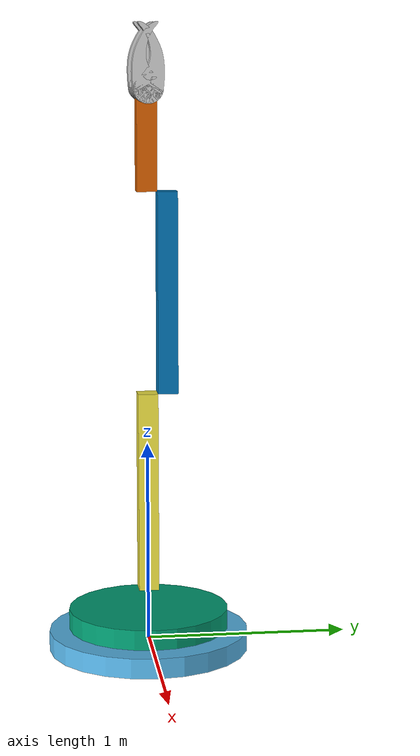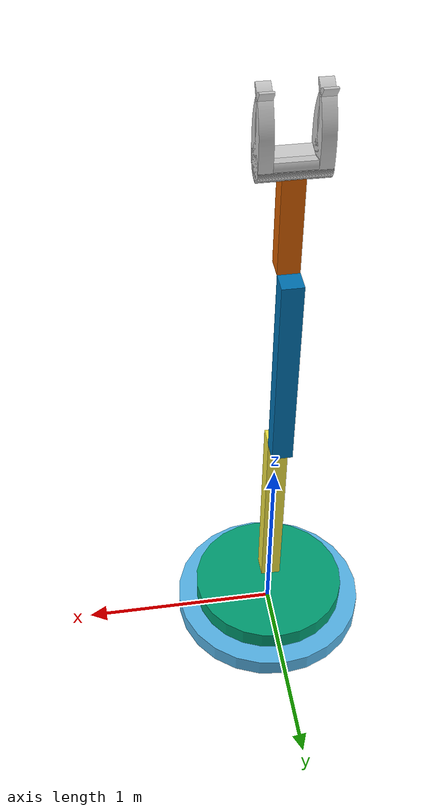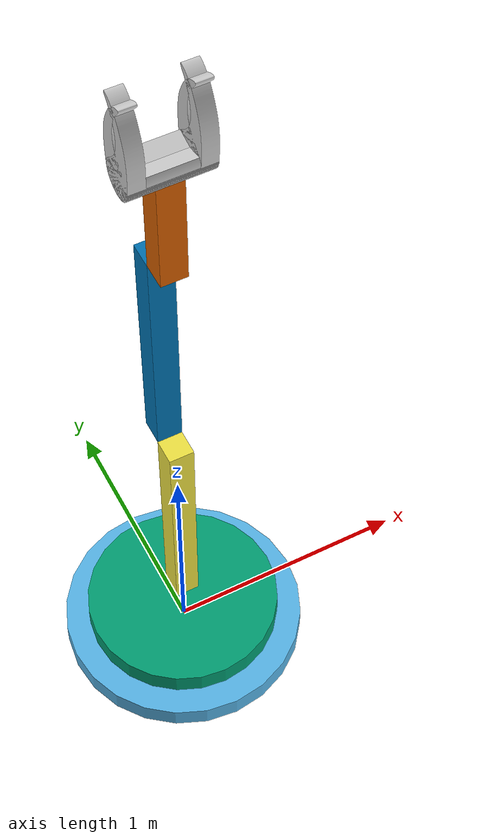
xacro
<?xml version="1.0"?>
<robot name="hdm_robotarm01" xmlns:xacro="http://www.ros.org/wiki/xacro">

    <xacro:include filename="$(find hdm_robotarm01)/urdf/xacro/link_joint.xacro"/>
    <xacro:include filename="$(find hdm_robotarm01)/urdf/xacro/transmission.xacro"/>
    <xacro:include filename="$(find hdm_robotarm01)/urdf/xacro/gazebo.xacro"/>

    <!-- fix model to world -->
    <link name="world"/>

    <joint name="fixed" type="fixed">
        <parent link="world"/>
        <child link="stationary_base"/>
    </joint>

    <!-- stationary_base -->
    <xacro:xacro_cylinder
        name="stationary_base"
        length="0.1"
        radius="0.5"
        mass="10.0"
        origin_rpy="0 0 0"
        origin_xyz="0 0 0"
    />

    <!-- spin_base -->
    <xacro:xacro_cylinder
        name="spin_base"
        length="0.1"
        radius="0.4"
        mass="2.0"
        origin_rpy="0 0 0"
        origin_xyz="0 0 0.05"
    />
    <xacro:xacro_joint
        name="stationary_base_spin_base_joint"
        type="revolute"
        axis="0 0 1"
        lower="-3.14"
        upper="3.14"
        parent="stationary_base"
        child="spin_base"
        origin_xyz="0 0 0.06"
    />
    <xacro:xacro_trans_position
        name="stationary_base_spin_base_trans"
        actuator="stationary_base_spin_base_actuator"
        joint="stationary_base_spin_base_joint"
    />

    <!-- arm1 -->
    <xacro:xacro_box
        name="arm1"
        w="1"
        h="0.1"
        d="0.1"
        origin_rpy="0 1.57 0"
        origin_xyz="0 0 0.5"
        mass="0.5"
    />
    <xacro:xacro_joint
        name="spin_base_arm1_joint"
        type="revolute"
        axis="0 1 0"
        lower="-1.57"
        upper="1.57"
        parent="spin_base"
        child="arm1"
        origin_xyz="0 0 0.2"
    />
    <xacro:xacro_trans_position
        name="spin_base_arm1_trans"
        actuator="spin_base_arm1_actuator"
        joint="spin_base_arm1_joint"
    />

    <!-- arm2 -->
    <xacro:xacro_box
        name="arm2"
        w="1"
        h="0.1"
        d="0.1"
        origin_rpy="0 1.57 0"
        origin_xyz="0 0.05 0.5"
        mass="0.5"
    />
    <xacro:xacro_joint
        name="arm1_arm2_joint"
        type="revolute"
        axis="0 1 0"
        lower="-3.14"
        upper="3.14"
        parent="arm1"
        child="arm2"
        origin_xyz="0 0.05 1"
    />
    <xacro:xacro_trans_position
        name="arm1_arm2_trans"
        actuator="arm1_arm2_actuator"
        joint="arm1_arm2_joint"
    />

    <!-- arm3 -->
    <xacro:xacro_box
        name="arm3"
        w="0.5"
        h="0.1"
        d="0.1"
        origin_rpy="0 1.57 0"
        origin_xyz="0 -0.05 0.25"
        mass="0.5"
    />
    <xacro:xacro_joint
        name="arm2_arm3_joint"
        type="revolute"
        axis="0 1 0"
        lower="-3.14"
        upper="3.14"
        parent="arm2"
        child="arm3"
        origin_xyz="0 0 1"
    />
    <xacro:xacro_trans_position
        name="arm2_arm3_trans"
        actuator="arm2_arm3_actuator"
        joint="arm2_arm3_joint"
    />

    <!-- gripper1 -->
    <xacro:xacro_mesh
        name="gripper1"
        file="package://hdm_robotarm01/mesh/gripper1.dae"
        origin_rpy="1.57 0 1.57"
        origin_xyz="-0.15 0 0"
        mass="0.1"
        scale="3"
    />
    <xacro:xacro_joint
        name="arm3_gripper1_joint"
        type="revolute"
        axis="-1 0 0"
        lower="-3.14"
        upper="0"
        parent="arm3"
        child="gripper1"
        origin_xyz="0 -0.05 0.5"
    />
    <xacro:xacro_trans_position
        name="arm3_gripper1_trans"
        actuator="arm3_gripper1_actuator"
        joint="arm3_gripper1_joint"
    />

    <!-- gripper2 -->
    <xacro:xacro_mesh
        name="gripper2"
        file="package://hdm_robotarm01/mesh/gripper2.dae"
        origin_rpy="1.57 0 1.57"
        origin_xyz="-0.15 0 0"
        mass="0.1"
        scale="3"
    />
    <xacro:xacro_joint
        name="arm3_gripper2_joint"
        type="revolute"
        axis="1 0 0"
        lower="-3.14"
        upper="0"
        parent="arm3"
        child="gripper2"
        origin_xyz="0 -0.05 0.5"
    />
    <xacro:xacro_trans_position
        name="arm3_gripper2_trans"
        actuator="arm3_gripper2_actuator"
        joint="arm3_gripper2_joint"
    />

</robot>

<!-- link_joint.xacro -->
<robot xmlns:xacro="http://www.ros.org.wiki.xacro">

    <xacro:macro name="xacro_cylinder" params="name length radius origin_rpy origin_xyz mass">
        <link name="${name}">
            <visual>
                <geometry>
                    <cylinder length="${length}" radius="${radius}"/>
                </geometry>
                <origin rpy="${origin_rpy}" xyz="${origin_xyz}"/>
            </visual>
            <collision>
                <geometry>
                    <cylinder length="${length}" radius="${radius}"/>
                </geometry>
                <surface>
                    <friction>
                        <ode>
                            <mu>0.5</mu>
                            <mu2>0.5</mu2>
                        </ode>
                    </friction>
                    <torsional>
                        <coefficient>1</coefficient>
                        <surface_radius>1</surface_radius>
                        <use_patch_radius>false</use_patch_radius>
                    </torsional>
                </surface>
                <origin rpy="${origin_rpy}" xyz="${origin_xyz}"/>
            </collision>
            <inertial>
                <mass value="${mass}"/>
                <inertia ixx="${mass*(3*radius*radius+length*length)/12}" ixy="0.0" ixz="0.0" iyy="${mass*(3*radius*radius+length*length)/12}" iyz="0.0" izz="${mass*radius*radius/2}"/>
            </inertial>
        </link>
    </xacro:macro>

    <xacro:macro name="xacro_box" params="name w h d origin_rpy origin_xyz mass">
        <link name="${name}">
            <visual>
                <geometry>
                    <box size="${w} ${h} ${d}"/>
                </geometry>
                <origin rpy="${origin_rpy}" xyz="${origin_xyz}"/>
            </visual>
            <collision>
                <geometry>
                    <box size="${w} ${h} ${d}"/>
                </geometry>
                <surface>
                    <friction>
                        <ode>
                            <mu>0.5</mu>
                            <mu2>0.5</mu2>
                        </ode>
                    </friction>
                </surface>
                <origin rpy="${origin_rpy}" xyz="${origin_xyz}"/>
            </collision>
            <inertial>
                <mass value="${mass}"/>
                <inertia ixx="${mass*(h*h+d*d)/12}" ixy="0.0" ixz="0.0" iyy="${mass*(w*w+d*d)/12}" iyz="0.0" izz="${mass*(w*w+h*h)/12}"/>
            </inertial>
        </link>
    </xacro:macro>

    <xacro:macro name="xacro_mesh" params="name file origin_rpy origin_xyz mass scale">
        <link name="${name}">
            <visual>
                <geometry>
                    <mesh filename="${file}" scale="${scale} ${scale} ${scale}"/>
                </geometry>
                <origin rpy="${origin_rpy}" xyz="${origin_xyz}"/>
            </visual>
            <collision>
                <geometry>
                    <mesh filename="${file}" scale="${scale} ${scale} ${scale}"/>
                </geometry>
                <surface>
                    <friction>
                        <ode>
                            <mu>0.8</mu>
                            <mu2>0.8</mu2>
                        </ode>
                    </friction>
                </surface>
                <origin rpy="${origin_rpy}" xyz="${origin_xyz}"/>
            </collision>
            <inertial>
                <mass value="${mass}"/>
                <inertia ixx="0.01" ixy="0.0" ixz="0.0" iyy="0.01" iyz="0.0" izz="0.01"/>
            </inertial>
        </link>
    </xacro:macro>

    <xacro:macro name="xacro_joint" params="name type axis lower upper parent child origin_xyz">
        <joint name="${name}" type="${type}">
            <axis xyz="${axis}"/>
            <limit effort="100" lower="${lower}" upper="${upper}" velocity="2"/>
            <parent link="${parent}"/>
            <child link="${child}"/>
            <origin xyz="${origin_xyz}"/>
            <dynamics damping="10.0" friction="0.3"/>
        </joint>
    </xacro:macro>

</robot>
